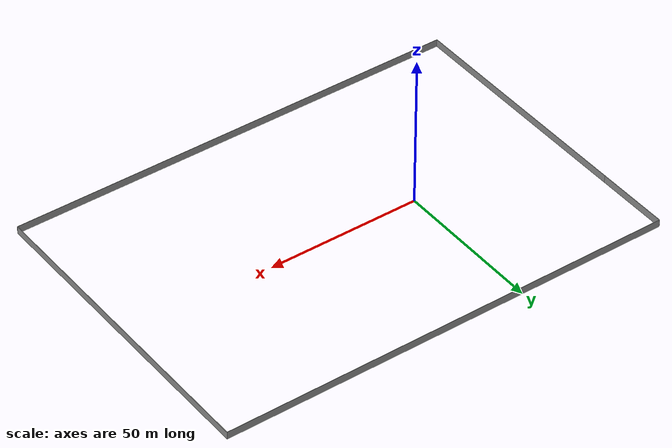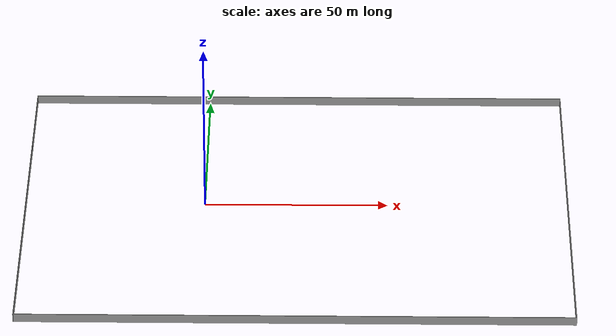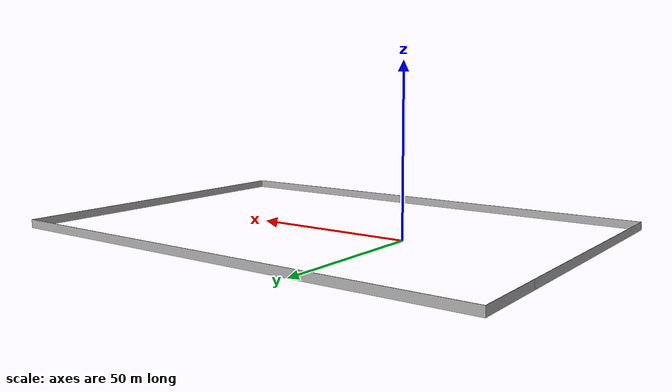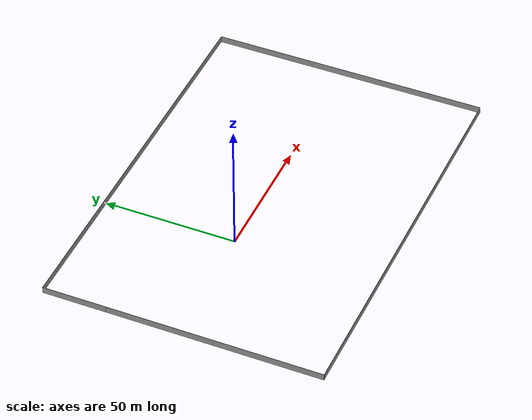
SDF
<?xml version='1.0'?>
<sdf version='1.7'>
  <model name='new_box'>
    <pose>25.1143 -2.2458 0 0 -0 0</pose>
    <link name='Wall_10'>
      <collision name='Wall_10_Collision'>
        <geometry>
          <box>
            <size>104.5 0.15 2.5</size>
          </box>
        </geometry>
        <pose>0 0 1.25 0 -0 0</pose>
      </collision>
      <visual name='Wall_10_Visual'>
        <pose>0 0 1.25 0 -0 0</pose>
        <geometry>
          <box>
            <size>104.5 0.15 2.5</size>
          </box>
        </geometry>
        <material>
          <script>
            <uri>file://media/materials/scripts/gazebo.material</uri>
            <name>Gazebo/Grey</name>
          </script>
          <ambient>1 1 1 1</ambient>
        </material>
        <meta>
          <layer>0</layer>
        </meta>
      </visual>
      <pose>74.425 -1e-06 0 0 -0 -1.5708</pose>
    </link>
    <link name='Wall_11'>
      <collision name='Wall_11_Collision'>
        <geometry>
          <box>
            <size>149 0.15 2.5</size>
          </box>
        </geometry>
        <pose>0 0 1.25 0 -0 0</pose>
      </collision>
      <visual name='Wall_11_Visual'>
        <pose>0 0 1.25 0 -0 0</pose>
        <geometry>
          <box>
            <size>149 0.15 2.5</size>
          </box>
        </geometry>
        <material>
          <script>
            <uri>file://media/materials/scripts/gazebo.material</uri>
            <name>Gazebo/Grey</name>
          </script>
          <ambient>1 1 1 1</ambient>
        </material>
        <meta>
          <layer>0</layer>
        </meta>
      </visual>
      <pose>2e-06 -52.175 0 0 -0 3.14159</pose>
    </link>
    <link name='Wall_12'>
      <collision name='Wall_12_Collision'>
        <geometry>
          <box>
            <size>80.5 0.15 2.5</size>
          </box>
        </geometry>
        <pose>0 0 1.25 0 -0 0</pose>
      </collision>
      <visual name='Wall_12_Visual'>
        <pose>0 0 1.25 0 -0 0</pose>
        <geometry>
          <box>
            <size>80.5 0.15 2.5</size>
          </box>
        </geometry>
        <material>
          <script>
            <uri>file://media/materials/scripts/gazebo.material</uri>
            <name>Gazebo/Grey</name>
          </script>
          <ambient>1 1 1 1</ambient>
        </material>
        <meta>
          <layer>0</layer>
        </meta>
      </visual>
      <pose>-74.425 -12 0 0 -0 1.5708</pose>
    </link>
    <link name='Wall_8'>
      <collision name='Wall_8_Collision'>
        <geometry>
          <box>
            <size>24.5 0.15 2.5</size>
          </box>
        </geometry>
        <pose>0 0 1.25 0 -0 0</pose>
      </collision>
      <visual name='Wall_8_Visual'>
        <pose>0 0 1.25 0 -0 0</pose>
        <geometry>
          <box>
            <size>24.5 0.15 2.5</size>
          </box>
        </geometry>
        <material>
          <script>
            <uri>file://media/materials/scripts/gazebo.material</uri>
            <name>Gazebo/Grey</name>
          </script>
          <ambient>1 1 1 1</ambient>
        </material>
        <meta>
          <layer>0</layer>
        </meta>
      </visual>
      <pose>-74.425 40 0 0 -0 1.5708</pose>
    </link>
    <link name='Wall_9'>
      <collision name='Wall_9_Collision'>
        <geometry>
          <box>
            <size>149 0.15 2.5</size>
          </box>
        </geometry>
        <pose>0 0 1.25 0 -0 0</pose>
      </collision>
      <visual name='Wall_9_Visual'>
        <pose>0 0 1.25 0 -0 0</pose>
        <geometry>
          <box>
            <size>149 0.15 2.5</size>
          </box>
        </geometry>
        <material>
          <script>
            <uri>file://media/materials/scripts/gazebo.material</uri>
            <name>Gazebo/Grey</name>
          </script>
          <ambient>1 1 1 1</ambient>
        </material>
        <meta>
          <layer>0</layer>
        </meta>
      </visual>
      <pose>2e-06 52.175 0 0 -0 0</pose>
    </link>
    <static>1</static>
  </model>
</sdf>
